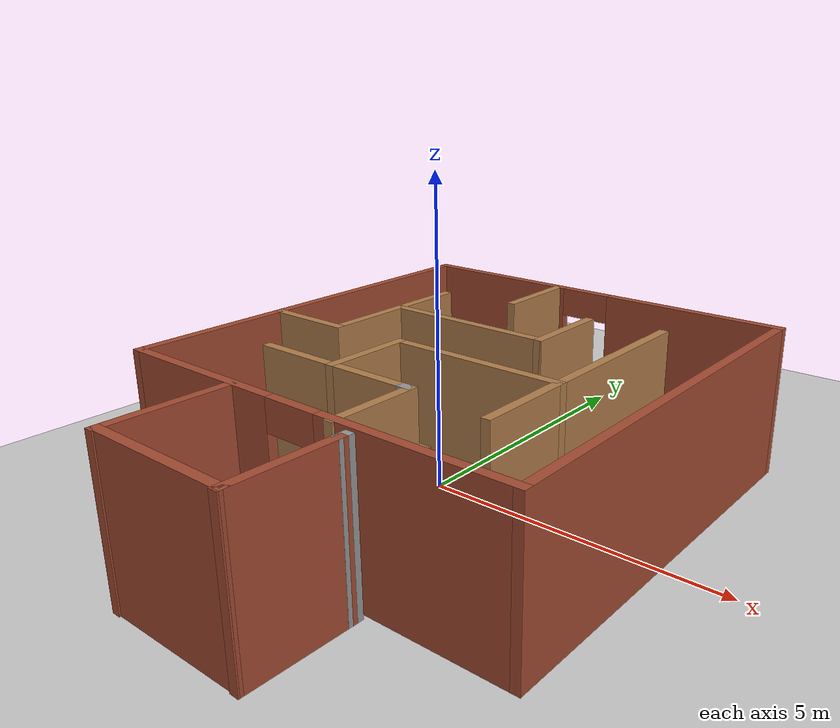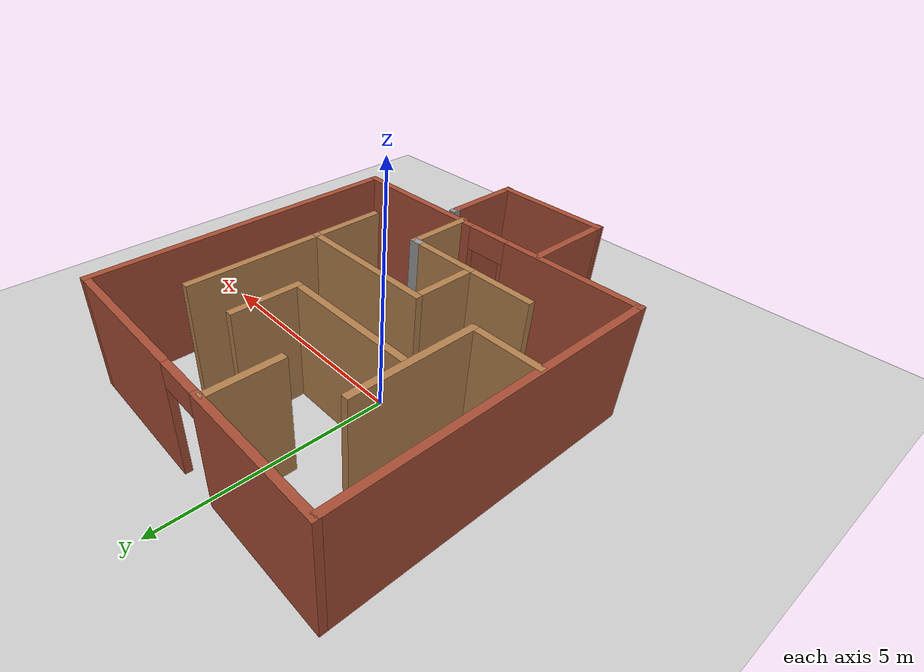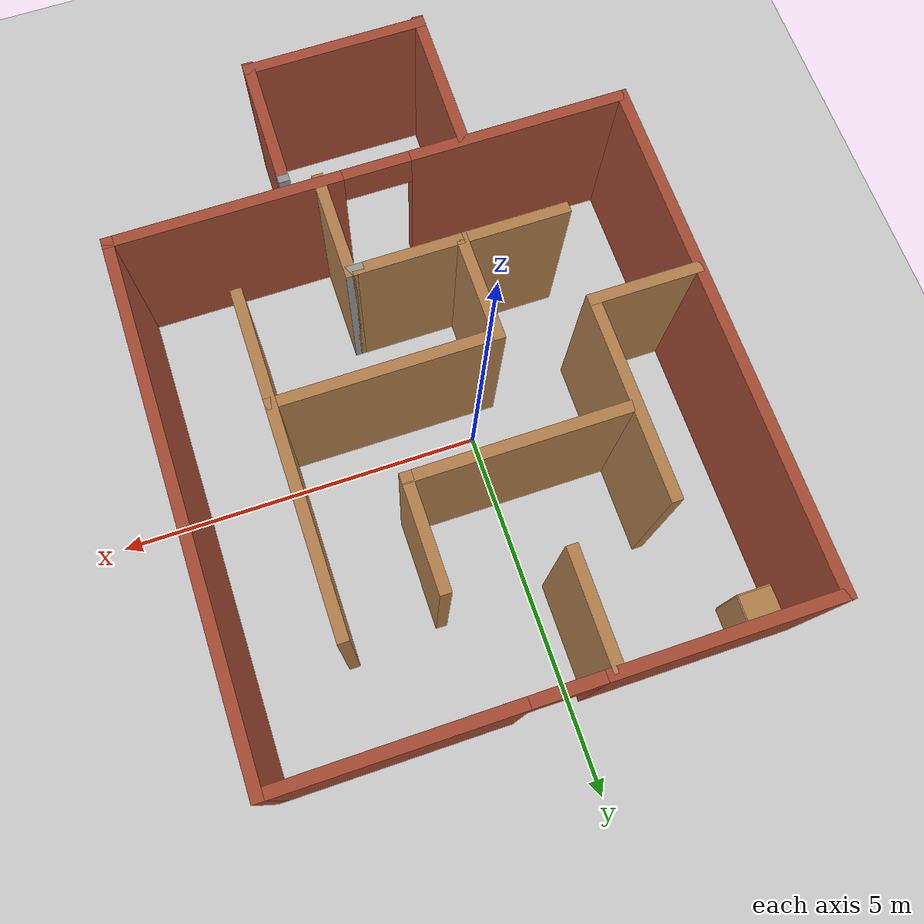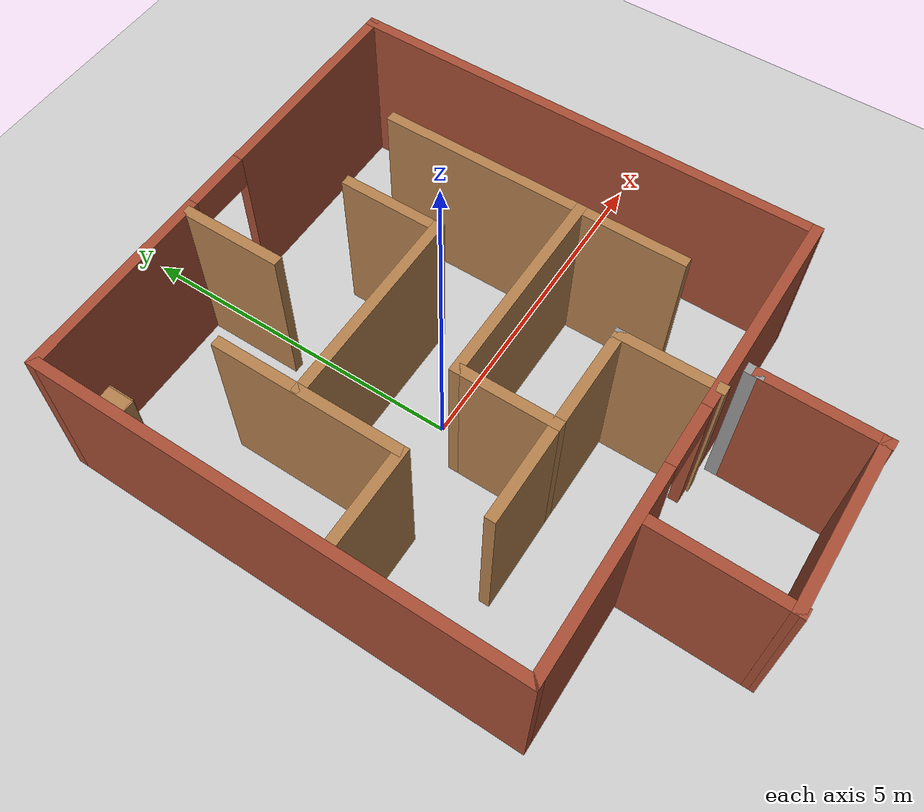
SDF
<sdf version="1.7">
 <world name="default">
  <light name="sun" type="directional">
   <pose>0 0 10 0 -0 0</pose>
   <diffuse>0.8 0.8 0.8 1</diffuse>
   <specular>0.2 0.2 0.2 1</specular>
   <attenuation>
    <range>1000</range>
    <constant>0.9</constant>
    <linear>0.01</linear>
    <quadratic>0.001</quadratic>
   </attenuation>
   <direction>-0.5 0.1 -0.9</direction>
   <spot><inner_angle>0</inner_angle><outer_angle>0</outer_angle><falloff>0</falloff></spot>
  </light>
  <model name="ground_plane">
   <static>1</static>
   <link name="link">
    <collision name="collision">
     <geometry><plane><normal>0 0 1</normal><size>100 100</size></plane></geometry>
     <surface><friction><ode><mu>100</mu><mu2>50</mu2></ode></friction></surface>
    </collision>
    <visual name="visual">
     <cast_shadows>0</cast_shadows>
     <geometry><plane><normal>0 0 1</normal><size>100 100</size></plane></geometry>
     <material>
      <script><uri>file://media/materials/scripts/gazebo.material</uri><name>Gazebo/Grey</name></script>
     </material>
    </visual>
   </link>
  </model>
  <gravity>0 0 -9.8</gravity>
  <magnetic_field>6e-06 2.3e-05 -4.2e-05</magnetic_field>
  <atmosphere type="adiabatic"/>
  <physics type="ode">
   <max_step_size>0.001</max_step_size>
   <real_time_factor>1</real_time_factor>
   <real_time_update_rate>1000</real_time_update_rate>
  </physics>
  <scene><ambient>0.4 0.4 0.4 1</ambient><background>0.7 0.7 0.7 1</background><shadows>1</shadows></scene>
  <audio><device>default</device></audio>
  <spherical_coordinates>
   <surface_model>EARTH_WGS84</surface_model>
   <latitude_deg>0</latitude_deg>
   <longitude_deg>0</longitude_deg>
   <elevation>0</elevation>
   <heading_deg>0</heading_deg>
  </spherical_coordinates>
  <model name="maze">
   <pose>0.415639 -0.659269 0 0 -0 0</pose>
   <link name="Wall_10">
    <collision name="Wall_10_Collision">
     <geometry><box><size>2.75 0.15 2.5</size></box></geometry>
     <pose>0 0 1.25 0 -0 0</pose>
    </collision>
    <visual name="Wall_10_Visual">
     <pose>0 0 1.25 0 -0 0</pose>
     <geometry><box><size>2.75 0.15 2.5</size></box></geometry>
     <material>
      <script><uri>file://media/materials/scripts/gazebo.material</uri><name>Gazebo/Wood</name></script>
      <ambient>1 1 1 1</ambient>
     </material>
     <meta><layer>0</layer></meta>
    </visual>
    <pose>-2.02874 1.43197 0 0 -0 1.5708</pose>
   </link>
   <link name="Wall_12">
    <collision name="Wall_12_Collision">
     <geometry><box><size>3 0.15 2.5</size></box></geometry>
     <pose>0 0 1.25 0 -0 0</pose>
    </collision>
    <visual name="Wall_12_Visual">
     <pose>0 0 1.25 0 -0 0</pose>
     <geometry><box><size>3 0.15 2.5</size></box></geometry>
     <material>
      <script><uri>file://media/materials/scripts/gazebo.material</uri><name>Gazebo/Wood</name></script>
      <ambient>1 1 1 1</ambient>
     </material>
     <meta><layer>0</layer></meta>
    </visual>
    <pose>-0.589033 1.56606 0 0 -0 0</pose>
   </link>
   <link name="Wall_13">
    <collision name="Wall_13_Collision">
     <geometry><box><size>1.5 0.15 2.5</size></box></geometry>
     <pose>0 0 1.25 0 -0 0</pose>
    </collision>
    <visual name="Wall_13_Visual">
     <pose>0 0 1.25 0 -0 0</pose>
     <geometry><box><size>1.5 0.15 2.5</size></box></geometry>
     <material>
      <script><uri>file://media/materials/scripts/gazebo.material</uri><name>Gazebo/Wood</name></script>
      <ambient>1 1 1 1</ambient>
     </material>
     <meta><layer>0</layer></meta>
    </visual>
    <pose>0.835967 2.24106 0 0 -0 1.5708</pose>
   </link>
   <link name="Wall_15">
    <collision name="Wall_15_Collision">
     <geometry><box><size>1.5 0.15 2.5</size></box></geometry>
     <pose>0 0 1.25 0 -0 0</pose>
    </collision>
    <visual name="Wall_15_Visual">
     <pose>0 0 1.25 0 -0 0</pose>
     <geometry><box><size>1.5 0.15 2.5</size></box></geometry>
     <material>
      <script><uri>file://media/materials/scripts/gazebo.material</uri><name>Gazebo/Wood</name></script>
      <ambient>1 1 1 1</ambient>
     </material>
     <meta><layer>0</layer></meta>
    </visual>
    <pose>-0.695588 3.64361 0 0 -0 -1.5708</pose>
   </link>
   <link name="Wall_17">
    <collision name="Wall_17_Collision">
     <geometry><box><size>4.5 0.15 2.5</size></box></geometry>
     <pose>0 0 1.25 0 -0 0</pose>
    </collision>
    <visual name="Wall_17_Visual">
     <pose>0 0 1.25 0 -0 0</pose>
     <geometry><box><size>4.5 0.15 2.5</size></box></geometry>
     <material>
      <script><uri>file://media/materials/scripts/gazebo.material</uri><name>Gazebo/Wood</name></script>
      <ambient>1 1 1 1</ambient>
     </material>
     <meta><layer>0</layer></meta>
    </visual>
    <pose>2.08008 0.894553 0 0 -0 -1.5708</pose>
   </link>
   <link name="Wall_19">
    <collision name="Wall_19_Collision">
     <geometry><box><size>3 0.15 2.5</size></box></geometry>
     <pose>0 0 1.25 0 -0 0</pose>
    </collision>
    <visual name="Wall_19_Visual">
     <pose>0 0 1.25 0 -0 0</pose>
     <geometry><box><size>3 0.15 2.5</size></box></geometry>
     <material>
      <script><uri>file://media/materials/scripts/gazebo.material</uri><name>Gazebo/Wood</name></script>
      <ambient>1 1 1 1</ambient>
     </material>
     <meta><layer>0</layer></meta>
    </visual>
    <pose>0.655085 0.201357 0 0 -0 3.14159</pose>
   </link>
   <link name="Wall_2">
    <collision name="Wall_2_Collision">
     <geometry><box><size>7 0.15 2.5</size></box></geometry>
     <pose>0 0 1.25 0 -0 0</pose>
    </collision>
    <visual name="Wall_2_Visual">
     <pose>0 0 1.25 0 -0 0</pose>
     <geometry><box><size>7 0.15 2.5</size></box></geometry>
     <material>
      <script><uri>file://media/materials/scripts/gazebo.material</uri><name>Gazebo/Bricks</name></script>
      <ambient>1 1 1 1</ambient>
     </material>
     <meta><layer>0</layer></meta>
    </visual>
    <pose>-3.425 0.962997 0 0 -0 -1.5708</pose>
   </link>
   <link name="Wall_20">
    <collision name="Wall_20_Collision">
     <geometry><box><size>1.5 0.15 2.5</size></box></geometry>
     <pose>0 0 1.25 0 -0 0</pose>
    </collision>
    <visual name="Wall_20_Visual">
     <pose>0 0 1.25 0 -0 0</pose>
     <geometry><box><size>1.5 0.15 2.5</size></box></geometry>
     <material>
      <script><uri>file://media/materials/scripts/gazebo.material</uri><name>Gazebo/Wood</name></script>
      <ambient>1 1 1 1</ambient>
     </material>
     <meta><layer>0</layer></meta>
    </visual>
    <pose>-0.769915 -0.473643 0 0 -0 -1.5708</pose>
   </link>
   <link name="Wall_21">
    <collision name="Wall_21_Collision">
     <geometry><box><size>1.5 0.15 2.5</size></box></geometry>
     <pose>0 0 1.25 0 -0 0</pose>
    </collision>
    <visual name="Wall_21_Visual">
     <pose>0 0 1.25 0 -0 0</pose>
     <geometry><box><size>1.5 0.15 2.5</size></box></geometry>
     <material>
      <script><uri>file://media/materials/scripts/gazebo.material</uri><name>Gazebo/Wood</name></script>
      <ambient>1 1 1 1</ambient>
     </material>
     <meta><layer>0</layer></meta>
    </visual>
    <pose>-1.44491 -1.14864 0 0 -0 3.14159</pose>
   </link>
   <link name="Wall_23">
    <collision name="Wall_23_Collision">
     <geometry><box><size>1.5 0.15 2.5</size></box></geometry>
     <pose>0 0 1.25 0 -0 0</pose>
    </collision>
    <visual name="Wall_23_Visual">
     <pose>0 0 1.25 0 -0 0</pose>
     <geometry><box><size>1.5 0.15 2.5</size></box></geometry>
     <material>
      <script><uri>file://media/materials/scripts/gazebo.material</uri><name>Gazebo/Wood</name></script>
      <ambient>1 1 1 1</ambient>
     </material>
     <meta><layer>0</layer></meta>
    </visual>
    <pose>-0.094915 -1.14864 0 0 -0 0</pose>
   </link>
   <link name="Wall_25">
    <collision name="Wall_25_Collision">
     <geometry><box><size>0.25 0.15 2.5</size></box></geometry>
     <pose>0 0 1.25 0 -0 0</pose>
    </collision>
    <visual name="Wall_25_Visual">
     <pose>0 0 1.25 0 -0 0</pose>
     <geometry><box><size>0.25 0.15 2.5</size></box></geometry>
     <material>
      <script><uri>file://media/materials/scripts/gazebo.material</uri><name>Gazebo/Grey</name></script>
      <ambient>1 1 1 1</ambient>
     </material>
     <meta><layer>0</layer></meta>
    </visual>
    <pose>0.630085 -1.14864 0 0 -0 0</pose>
   </link>
   <link name="Wall_26">
    <collision name="Wall_26_Collision">
     <geometry><box><size>1.5 0.15 2.5</size></box></geometry>
     <pose>0 0 1.25 0 -0 0</pose>
    </collision>
    <visual name="Wall_26_Visual">
     <pose>0 0 1.25 0 -0 0</pose>
     <geometry><box><size>1.5 0.15 2.5</size></box></geometry>
     <material>
      <script><uri>file://media/materials/scripts/gazebo.material</uri><name>Gazebo/Wood</name></script>
      <ambient>1 1 1 1</ambient>
     </material>
     <meta><layer>0</layer></meta>
    </visual>
    <pose>0.680085 -1.82364 0 0 -0 -1.5708</pose>
   </link>
   <link name="Wall_28">
    <collision name="Wall_28_Collision">
     <geometry><box><size>2.00902 0.15 2.5</size></box></geometry>
     <pose>0 0 1.25 0 -0 0</pose>
    </collision>
    <visual name="Wall_28_Visual">
     <pose>0 0 1.25 0 -0 0</pose>
     <geometry><box><size>2.00902 0.15 2.5</size></box></geometry>
     <material>
      <script><uri>file://media/materials/scripts/gazebo.material</uri><name>Gazebo/Bricks</name></script>
      <ambient>1 1 1 1</ambient>
     </material>
     <meta><layer>0</layer></meta>
    </visual>
    <pose>-1.26229 -3.45749 0 0 -0 -1.58324</pose>
   </link>
   <link name="Wall_29">
    <collision name="Wall_29_Collision">
     <geometry><box><size>2.5 0.15 2.5</size></box></geometry>
     <pose>0 0 1.25 0 -0 0</pose>
    </collision>
    <visual name="Wall_29_Visual">
     <pose>0 0 1.25 0 -0 0</pose>
     <geometry><box><size>2.5 0.15 2.5</size></box></geometry>
     <material>
      <script><uri>file://media/materials/scripts/gazebo.material</uri><name>Gazebo/Bricks</name></script>
      <ambient>1 1 1 1</ambient>
     </material>
     <meta><layer>0</layer></meta>
    </visual>
    <pose>-0.098853 -4.3638 0 0 -0 0</pose>
   </link>
   <link name="Wall_3">
    <pose>0 -2.462 0 0 -0 0</pose>
    <visual name="Wall_3_Visual_0">
     <pose>-2.01053 0 1.25 0 -0 0</pose>
     <geometry><box><size>2.97894 0.15 2.5</size></box></geometry>
     <material>
      <script><uri>file://media/materials/scripts/gazebo.material</uri><name>Gazebo/Bricks</name></script>
      <ambient>1 1 1 1</ambient>
     </material>
     <meta><layer>0</layer></meta>
    </visual>
    <collision name="Wall_3_Collision_0">
     <geometry><box><size>2.97894 0.15 2.5</size></box></geometry>
     <pose>-2.01053 0 1.25 0 -0 0</pose>
    </collision>
    <visual name="Wall_3_Visual_1">
     <pose>1.93947 0 1.25 0 -0 0</pose>
     <geometry><box><size>3.12106 0.15 2.5</size></box></geometry>
     <material>
      <script><uri>file://media/materials/scripts/gazebo.material</uri><name>Gazebo/Bricks</name></script>
      <ambient>1 1 1 1</ambient>
     </material>
     <meta><layer>0</layer></meta>
    </visual>
    <collision name="Wall_3_Collision_1">
     <geometry><box><size>3.12106 0.15 2.5</size></box></geometry>
     <pose>1.93947 0 1.25 0 -0 0</pose>
    </collision>
    <visual name="Wall_3_Visual_2">
     <pose>-0.071062 0 2.25 0 -0 0</pose>
     <geometry><box><size>0.9 0.15 0.5</size></box></geometry>
     <material>
      <script><uri>file://media/materials/scripts/gazebo.material</uri><name>Gazebo/Bricks</name></script>
      <ambient>1 1 1 1</ambient>
     </material>
     <meta><layer>0</layer></meta>
    </visual>
    <collision name="Wall_3_Collision_2">
     <geometry><box><size>0.9 0.15 0.5</size></box></geometry>
     <pose>-0.071062 0 2.25 0 -0 0</pose>
    </collision>
   </link>
   <link name="Wall_30">
    <collision name="Wall_30_Collision">
     <geometry><box><size>1.75904 0.15 2.5</size></box></geometry>
     <pose>0 0 1.25 0 -0 0</pose>
    </collision>
    <visual name="Wall_30_Visual">
     <pose>0 0 1.25 0 -0 0</pose>
     <geometry><box><size>1.75904 0.15 2.5</size></box></geometry>
     <material>
      <script><uri>file://media/materials/scripts/gazebo.material</uri><name>Gazebo/Bricks</name></script>
      <ambient>1 1 1 1</ambient>
     </material>
     <meta><layer>0</layer></meta>
    </visual>
    <pose>1.08771 -3.58249 0 0 -0 1.55642</pose>
   </link>
   <link name="Wall_31">
    <collision name="Wall_31_Collision">
     <geometry><box><size>0.25 0.15 2.5</size></box></geometry>
     <pose>0 0 1.25 0 -0 0</pose>
    </collision>
    <visual name="Wall_31_Visual">
     <pose>0 0 1.25 0 -0 0</pose>
     <geometry><box><size>0.25 0.15 2.5</size></box></geometry>
     <material>
      <script><uri>file://media/materials/scripts/gazebo.material</uri><name>Gazebo/Grey</name></script>
      <ambient>1 1 1 1</ambient>
     </material>
     <meta><layer>0</layer></meta>
    </visual>
    <pose>1.09928 -2.72805 0 0 -0 1.5708</pose>
   </link>
   <link name="Wall_6">
    <collision name="Wall_6_Collision">
     <geometry><box><size>7 0.15 2.5</size></box></geometry>
     <pose>0 0 1.25 0 -0 0</pose>
    </collision>
    <visual name="Wall_6_Visual">
     <pose>0 0 1.25 0 -0 0</pose>
     <geometry><box><size>7 0.15 2.5</size></box></geometry>
     <material>
      <script><uri>file://media/materials/scripts/gazebo.material</uri><name>Gazebo/Bricks</name></script>
      <ambient>1 1 1 1</ambient>
     </material>
     <meta><layer>0</layer></meta>
    </visual>
    <pose>3.425 0.962997 0 0 -0 1.5708</pose>
   </link>
   <link name="Wall_7">
    <pose>0 4.388 0 0 -0 3.14159</pose>
    <visual name="Wall_7_Visual_0">
     <pose>-1.9279 0 1.25 0 -0 0</pose>
     <geometry><box><size>3.14419 0.15 2.5</size></box></geometry>
     <material>
      <script><uri>file://media/materials/scripts/gazebo.material</uri><name>Gazebo/Bricks</name></script>
      <ambient>1 1 1 1</ambient>
     </material>
     <meta><layer>0</layer></meta>
    </visual>
    <collision name="Wall_7_Collision_0">
     <geometry><box><size>3.14419 0.15 2.5</size></box></geometry>
     <pose>-1.9279 0 1.25 0 -0 0</pose>
    </collision>
    <visual name="Wall_7_Visual_1">
     <pose>2.0221 0 1.25 0 -0 0</pose>
     <geometry><box><size>2.95581 0.15 2.5</size></box></geometry>
     <material>
      <script><uri>file://media/materials/scripts/gazebo.material</uri><name>Gazebo/Bricks</name></script>
      <ambient>1 1 1 1</ambient>
     </material>
     <meta><layer>0</layer></meta>
    </visual>
    <collision name="Wall_7_Collision_1">
     <geometry><box><size>2.95581 0.15 2.5</size></box></geometry>
     <pose>2.0221 0 1.25 0 -0 0</pose>
    </collision>
    <visual name="Wall_7_Visual_2">
     <pose>0.094192 0 2.25 0 -0 0</pose>
     <geometry><box><size>0.9 0.15 0.5</size></box></geometry>
     <material>
      <script><uri>file://media/materials/scripts/gazebo.material</uri><name>Gazebo/Bricks</name></script>
      <ambient>1 1 1 1</ambient>
     </material>
     <meta><layer>0</layer></meta>
    </visual>
    <collision name="Wall_7_Collision_2">
     <geometry><box><size>0.9 0.15 0.5</size></box></geometry>
     <pose>0.094192 0 2.25 0 -0 0</pose>
    </collision>
   </link>
   <link name="Wall_9">
    <collision name="Wall_9_Collision">
     <geometry><box><size>1.5 0.15 2.5</size></box></geometry>
     <pose>0 0 1.25 0 -0 0</pose>
    </collision>
    <visual name="Wall_9_Visual">
     <pose>0 0 1.25 0 -0 0</pose>
     <geometry><box><size>1.5 0.15 2.5</size></box></geometry>
     <material>
      <script><uri>file://media/materials/scripts/gazebo.material</uri><name>Gazebo/Wood</name></script>
      <ambient>1 1 1 1</ambient>
     </material>
     <meta><layer>0</layer></meta>
    </visual>
    <pose>-2.70374 0.131966 0 0 -0 0</pose>
   </link>
   <static>1</static>
  </model>
  <model name="cabinet">
   <static>1</static>
   <link name="cabinet_bottom_plate">
    <inertial>
     <pose>0 0 -1 0 -0 0</pose>
     <inertia><ixx>2.05</ixx><ixy>0</ixy><ixz>0</ixz><iyy>2.05</iyy><iyz>0</iyz><izz>2.05</izz></inertia>
     <mass>25</mass>
    </inertial>
    <collision name="cabinet_bottom_plate_geom">
     <pose>0 0 0.01 0 -0 0</pose>
     <geometry><box><size>0.45 0.45 0.02</size></box></geometry>
    </collision>
    <visual name="cabinet_bottom_plate_geom_visual">
     <pose>0 0 0.01 0 -0 0</pose>
     <geometry><box><size>0.45 0.45 0.02</size></box></geometry>
     <material>
      <script><uri>file://media/materials/scripts/gazebo.material</uri><name>Gazebo/Wood</name></script>
     </material>
    </visual>
    <collision name="cabinet_bottom_plate_geom_cabinet_back_plate">
     <pose>0.235 0 0.51 0 -0 0</pose>
     <geometry><box><size>0.02 0.45 1.02</size></box></geometry>
    </collision>
    <visual name="cabinet_bottom_plate_geom_cabinet_back_plate_visual">
     <pose>0.235 0 0.51 0 -0 0</pose>
     <geometry><box><size>0.02 0.45 1.02</size></box></geometry>
     <material>
      <script><uri>file://media/materials/scripts/gazebo.material</uri><name>Gazebo/Wood</name></script>
     </material>
    </visual>
    <collision name="cabinet_bottom_plate_geom_cabinet_left_plate">
     <pose>0 0.235 0.51 0 -0 0</pose>
     <geometry><box><size>0.45 0.02 1.02</size></box></geometry>
    </collision>
    <visual name="cabinet_bottom_plate_geom_cabinet_left_plate_visual">
     <pose>0 0.235 0.51 0 -0 0</pose>
     <geometry><box><size>0.45 0.02 1.02</size></box></geometry>
     <material>
      <script><uri>file://media/materials/scripts/gazebo.material</uri><name>Gazebo/Wood</name></script>
     </material>
    </visual>
    <collision name="cabinet_bottom_plate_geom_cabinet_middle_plate">
     <pose>0 0 0.51 0 -0 0</pose>
     <geometry><box><size>0.45 0.45 0.02</size></box></geometry>
    </collision>
    <visual name="cabinet_bottom_plate_geom_cabinet_middle_plate_visual">
     <pose>0 0 0.51 0 -0 0</pose>
     <geometry><box><size>0.45 0.45 0.02</size></box></geometry>
     <material>
      <script><uri>file://media/materials/scripts/gazebo.material</uri><name>Gazebo/Wood</name></script>
     </material>
    </visual>
    <collision name="cabinet_bottom_plate_geom_cabinet_right_plate">
     <pose>0 -0.235 0.51 0 -0 0</pose>
     <geometry><box><size>0.45 0.02 1.02</size></box></geometry>
    </collision>
    <visual name="cabinet_bottom_plate_geom_cabinet_right_plate_visual">
     <pose>0 -0.235 0.51 0 -0 0</pose>
     <geometry><box><size>0.45 0.02 1.02</size></box></geometry>
     <material>
      <script><uri>file://media/materials/scripts/gazebo.material</uri><name>Gazebo/Wood</name></script>
     </material>
    </visual>
    <collision name="cabinet_bottom_plate_geom_cabinet_top_plate">
     <pose>0 0 1.01 0 -0 0</pose>
     <geometry><box><size>0.45 0.45 0.02</size></box></geometry>
    </collision>
    <visual name="cabinet_bottom_plate_geom_cabinet_top_plate_visual">
     <pose>0 0 1.01 0 -0 0</pose>
     <geometry><box><size>0.45 0.45 0.02</size></box></geometry>
     <material>
      <script><uri>file://media/materials/scripts/gazebo.material</uri><name>Gazebo/Wood</name></script>
     </material>
    </visual>
   </link>
   <pose>-2.53862 3.48376 0 0 -0 0</pose>
  </model>
  <model name="cabinet_0">
   <static>1</static>
   <link name="cabinet_bottom_plate">
    <inertial>
     <pose>0 0 -1 0 -0 0</pose>
     <inertia><ixx>2.05</ixx><ixy>0</ixy><ixz>0</ixz><iyy>2.05</iyy><iyz>0</iyz><izz>2.05</izz></inertia>
     <mass>25</mass>
    </inertial>
    <collision name="cabinet_bottom_plate_geom">
     <pose>0 0 0.01 0 -0 0</pose>
     <geometry><box><size>0.45 0.45 0.02</size></box></geometry>
    </collision>
    <visual name="cabinet_bottom_plate_geom_visual">
     <pose>0 0 0.01 0 -0 0</pose>
     <geometry><box><size>0.45 0.45 0.02</size></box></geometry>
     <material>
      <script><uri>file://media/materials/scripts/gazebo.material</uri><name>Gazebo/Wood</name></script>
     </material>
    </visual>
    <collision name="cabinet_bottom_plate_geom_cabinet_back_plate">
     <pose>0.235 0 0.51 0 -0 0</pose>
     <geometry><box><size>0.02 0.45 1.02</size></box></geometry>
    </collision>
    <visual name="cabinet_bottom_plate_geom_cabinet_back_plate_visual">
     <pose>0.235 0 0.51 0 -0 0</pose>
     <geometry><box><size>0.02 0.45 1.02</size></box></geometry>
     <material>
      <script><uri>file://media/materials/scripts/gazebo.material</uri><name>Gazebo/Wood</name></script>
     </material>
    </visual>
    <collision name="cabinet_bottom_plate_geom_cabinet_left_plate">
     <pose>0 0.235 0.51 0 -0 0</pose>
     <geometry><box><size>0.45 0.02 1.02</size></box></geometry>
    </collision>
    <visual name="cabinet_bottom_plate_geom_cabinet_left_plate_visual">
     <pose>0 0.235 0.51 0 -0 0</pose>
     <geometry><box><size>0.45 0.02 1.02</size></box></geometry>
     <material>
      <script><uri>file://media/materials/scripts/gazebo.material</uri><name>Gazebo/Wood</name></script>
     </material>
    </visual>
    <collision name="cabinet_bottom_plate_geom_cabinet_middle_plate">
     <pose>0 0 0.51 0 -0 0</pose>
     <geometry><box><size>0.45 0.45 0.02</size></box></geometry>
    </collision>
    <visual name="cabinet_bottom_plate_geom_cabinet_middle_plate_visual">
     <pose>0 0 0.51 0 -0 0</pose>
     <geometry><box><size>0.45 0.45 0.02</size></box></geometry>
     <material>
      <script><uri>file://media/materials/scripts/gazebo.material</uri><name>Gazebo/Wood</name></script>
     </material>
    </visual>
    <collision name="cabinet_bottom_plate_geom_cabinet_right_plate">
     <pose>0 -0.235 0.51 0 -0 0</pose>
     <geometry><box><size>0.45 0.02 1.02</size></box></geometry>
    </collision>
    <visual name="cabinet_bottom_plate_geom_cabinet_right_plate_visual">
     <pose>0 -0.235 0.51 0 -0 0</pose>
     <geometry><box><size>0.45 0.02 1.02</size></box></geometry>
     <material>
      <script><uri>file://media/materials/scripts/gazebo.material</uri><name>Gazebo/Wood</name></script>
     </material>
    </visual>
    <collision name="cabinet_bottom_plate_geom_cabinet_top_plate">
     <pose>0 0 1.01 0 -0 0</pose>
     <geometry><box><size>0.45 0.45 0.02</size></box></geometry>
    </collision>
    <visual name="cabinet_bottom_plate_geom_cabinet_top_plate_visual">
     <pose>0 0 1.01 0 -0 0</pose>
     <geometry><box><size>0.45 0.45 0.02</size></box></geometry>
     <material>
      <script><uri>file://media/materials/scripts/gazebo.material</uri><name>Gazebo/Wood</name></script>
     </material>
    </visual>
   </link>
   <pose>0.140843 -0.848809 0 0 -0 0</pose>
  </model>
 </world>
</sdf>
